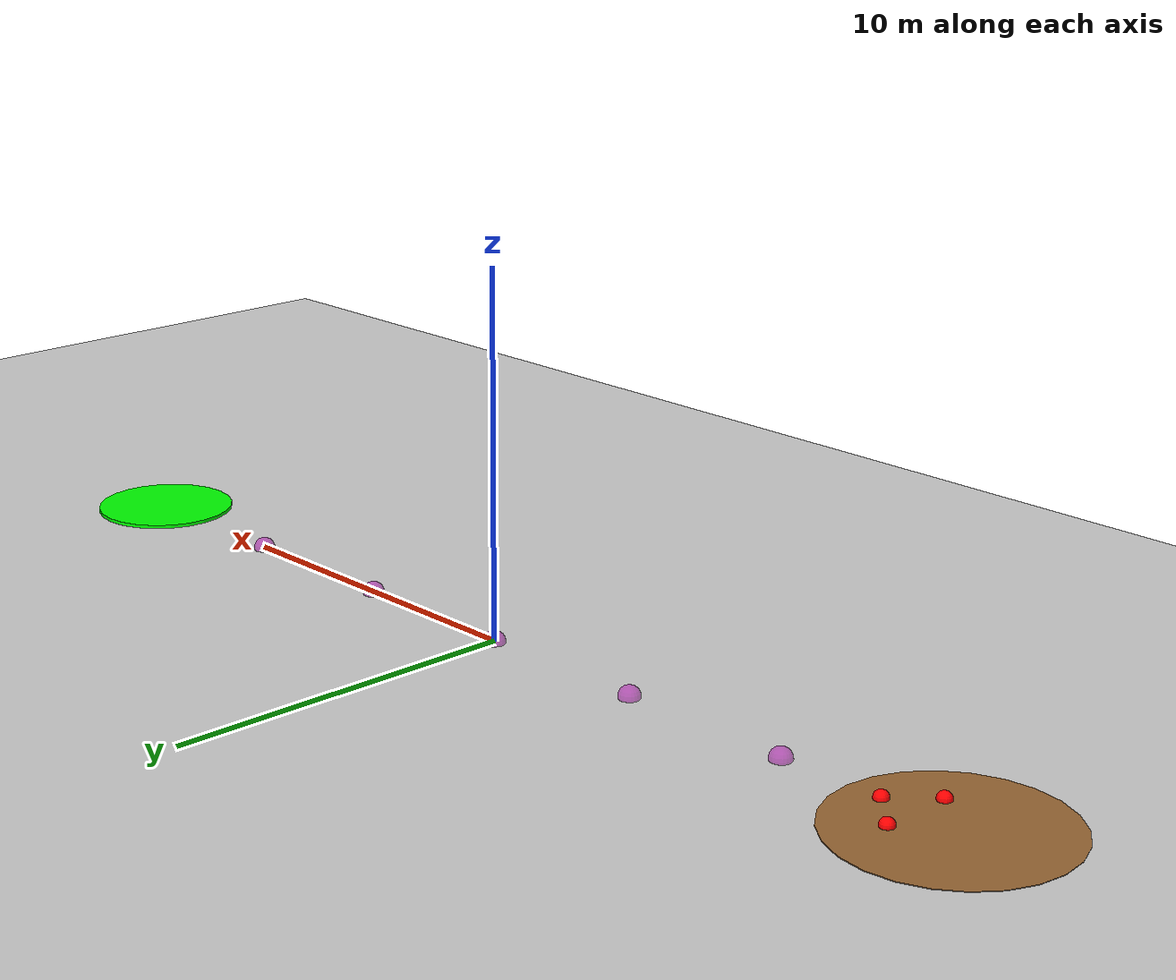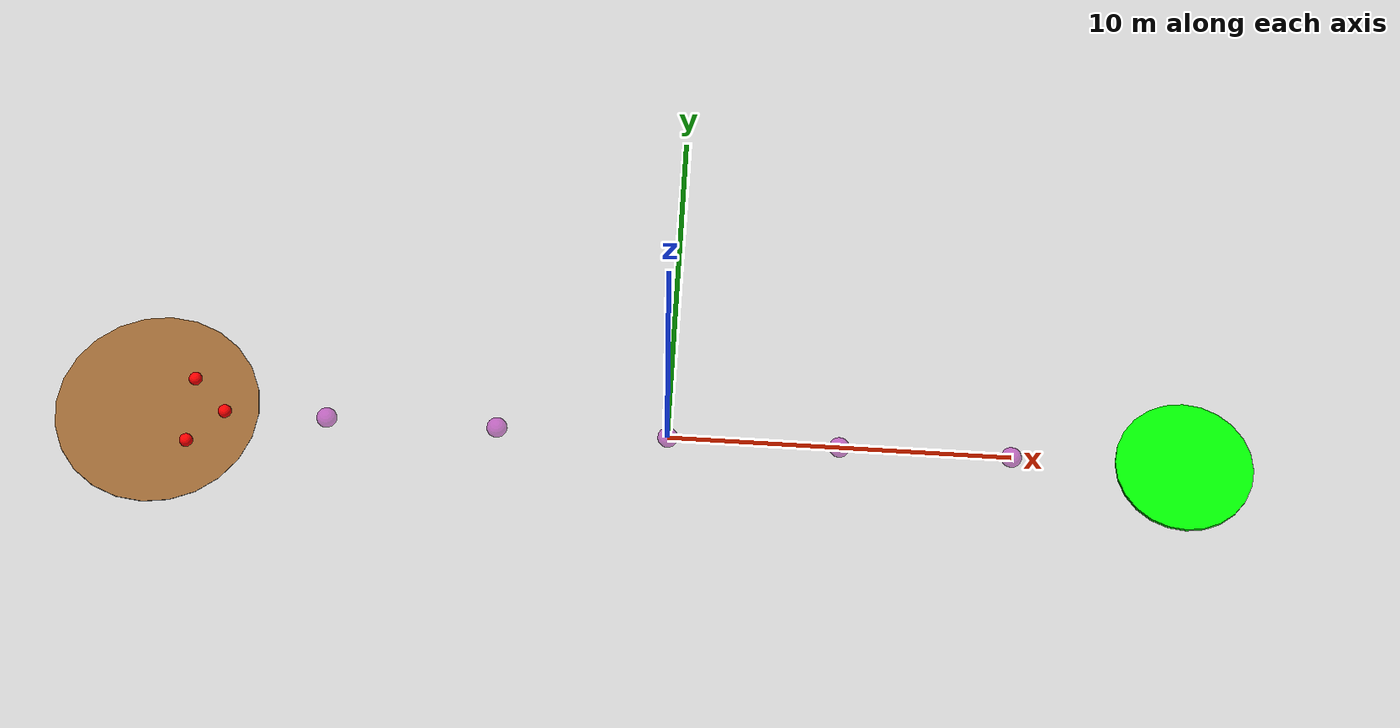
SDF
<?xml version="1.0"?>
<sdf version="1.6">
  <world name="ant_colony_world">

    <!-- Ground and lighting -->
    <include>
      <uri>model://ground_plane</uri>
    </include>

    <include>
      <uri>model://sun</uri>
    </include>

    <!-- Nest (brown circle) -->
    <model name="nest">
      <pose>-15 0 0.01 0 0 0</pose>
      <static>true</static>
      <link name="nest_link">
        <visual name="visual">
          <geometry>
            <cylinder>
              <radius>3</radius>
              <length>0.02</length>
            </cylinder>
          </geometry>
          <material>
            <ambient>0.6 0.4 0.2 1</ambient>
            <diffuse>0.6 0.4 0.2 1</diffuse>
          </material>
        </visual>
        <collision name="collision">
          <geometry>
            <cylinder>
              <radius>3</radius>
              <length>0.02</length>
            </cylinder>
          </geometry>
        </collision>
      </link>
    </model>

    <!-- Food Source (green circle) -->
    <model name="food_source">
      <pose>15 0 0.05 0 0 0</pose>
      <static>true</static>
      <link name="food_link">
        <visual name="visual">
          <geometry>
            <cylinder>
              <radius>2</radius>
              <length>0.1</length>
            </cylinder>
          </geometry>
          <material>
            <ambient>0 0.8 0 1</ambient>
            <diffuse>0 1 0 1</diffuse>
          </material>
        </visual>
        <collision name="collision">
          <geometry>
            <cylinder>
              <radius>2</radius>
              <length>0.1</length>
            </cylinder>
          </geometry>
        </collision>
      </link>
    </model>

    <!-- Pheromone trail visualization markers -->
    <model name="trail_marker_1">
      <pose>-10 0 0.01 0 0 0</pose>
      <static>true</static>
      <link name="link">
        <visual name="visual">
          <geometry>
            <sphere><radius>0.3</radius></sphere>
          </geometry>
          <material>
            <ambient>0.5 0 0.5 0.5</ambient>
            <diffuse>0.7 0 0.7 0.5</diffuse>
          </material>
        </visual>
      </link>
    </model>

    <model name="trail_marker_2">
      <pose>-5 0 0.01 0 0 0</pose>
      <static>true</static>
      <link name="link">
        <visual name="visual">
          <geometry>
            <sphere><radius>0.3</radius></sphere>
          </geometry>
          <material>
            <ambient>0.5 0 0.5 0.5</ambient>
            <diffuse>0.7 0 0.7 0.5</diffuse>
          </material>
        </visual>
      </link>
    </model>

    <model name="trail_marker_3">
      <pose>0 0 0.01 0 0 0</pose>
      <static>true</static>
      <link name="link">
        <visual name="visual">
          <geometry>
            <sphere><radius>0.3</radius></sphere>
          </geometry>
          <material>
            <ambient>0.5 0 0.5 0.5</ambient>
            <diffuse>0.7 0 0.7 0.5</diffuse>
          </material>
        </visual>
      </link>
    </model>

    <model name="trail_marker_4">
      <pose>5 0 0.01 0 0 0</pose>
      <static>true</static>
      <link name="link">
        <visual name="visual">
          <geometry>
            <sphere><radius>0.3</radius></sphere>
          </geometry>
          <material>
            <ambient>0.5 0 0.5 0.5</ambient>
            <diffuse>0.7 0 0.7 0.5</diffuse>
          </material>
        </visual>
      </link>
    </model>

    <model name="trail_marker_5">
      <pose>10 0 0.01 0 0 0</pose>
      <static>true</static>
      <link name="link">
        <visual name="visual">
          <geometry>
            <sphere><radius>0.3</radius></sphere>
          </geometry>
          <material>
            <ambient>0.5 0 0.5 0.5</ambient>
            <diffuse>0.7 0 0.7 0.5</diffuse>
          </material>
        </visual>
      </link>
    </model>

    <!-- Ant representations (small spheres) -->
    <model name="ant_1">
      <pose>-14 1 0.05 0 0 0</pose>
      <static>false</static>
      <link name="link">
        <visual name="visual">
          <geometry>
            <sphere><radius>0.2</radius></sphere>
          </geometry>
          <material>
            <ambient>1 0 0 1</ambient>
            <diffuse>1 0 0 1</diffuse>
          </material>
        </visual>
      </link>
    </model>

    <model name="ant_2">
      <pose>-14 -1 0.05 0 0 0</pose>
      <static>false</static>
      <link name="link">
        <visual name="visual">
          <geometry>
            <sphere><radius>0.2</radius></sphere>
          </geometry>
          <material>
            <ambient>1 0 0 1</ambient>
            <diffuse>1 0 0 1</diffuse>
          </material>
        </visual>
      </link>
    </model>

    <model name="ant_3">
      <pose>-13 0 0.05 0 0 0</pose>
      <static>false</static>
      <link name="link">
        <visual name="visual">
          <geometry>
            <sphere><radius>0.2</radius></sphere>
          </geometry>
          <material>
            <ambient>1 0 0 1</ambient>
            <diffuse>1 0 0 1</diffuse>
          </material>
        </visual>
      </link>
    </model>

  </world>
</sdf>
